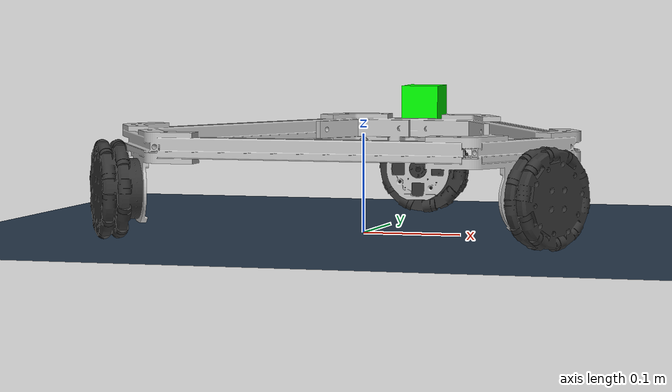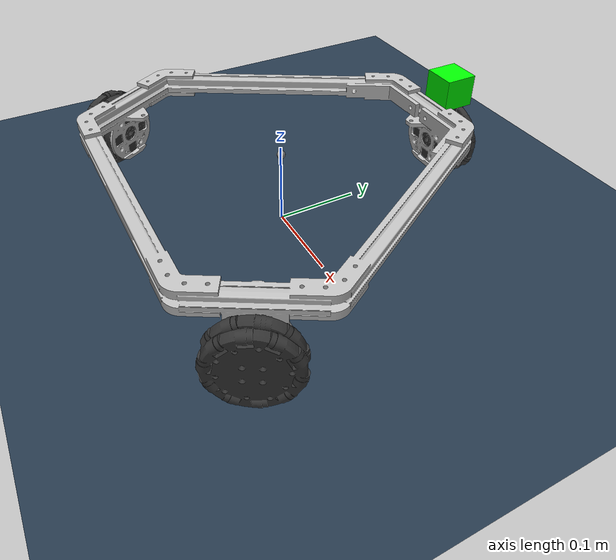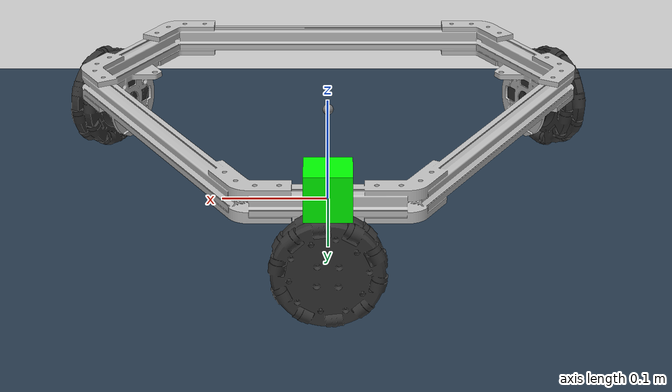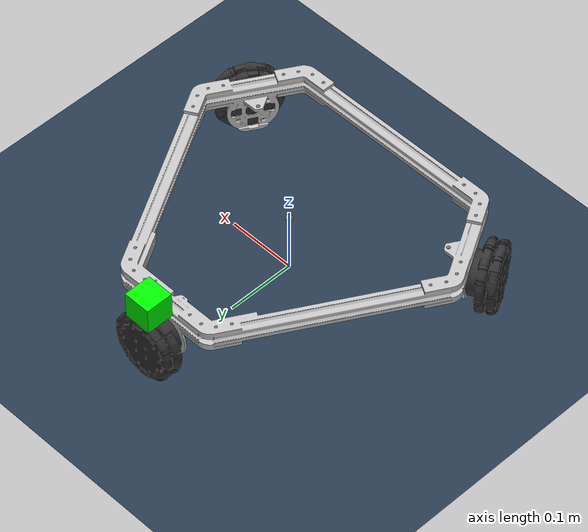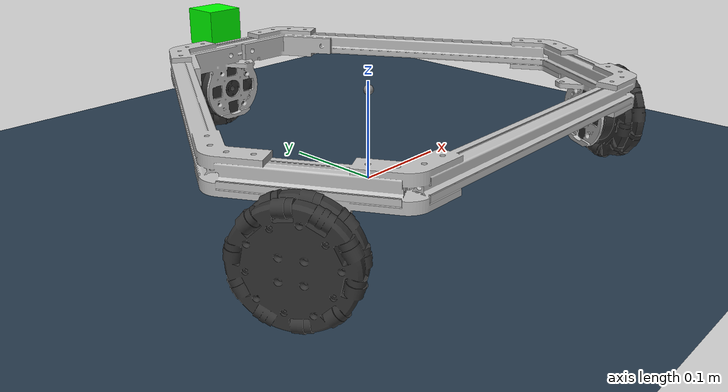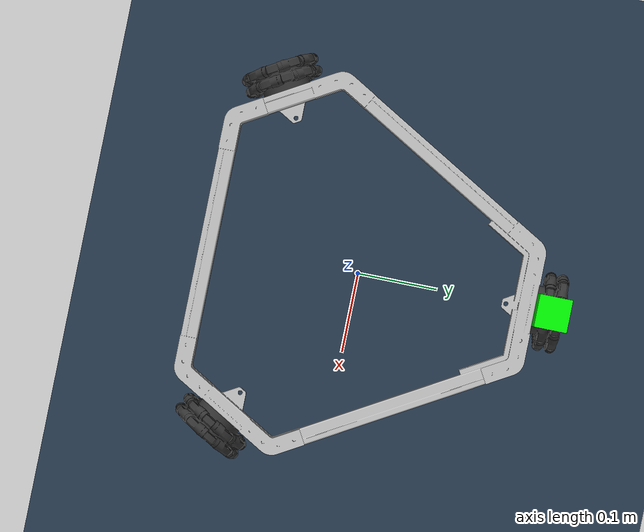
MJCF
<mujoco model="tz_agv">
    <compiler angle="radian" autolimits="true" meshdir="./meshes/" />

    <asset>
        <mesh name="base" file="base.stl" />
        <mesh name="wheel" file="wheel.stl" />

        <texture name="grid" type="2d" builtin="checker" rgb1=".2 .3 .4" rgb2=".1 0.15 0.2" width="512" height="512" mark="cross" markrgb=".8 .8 .8" />
        <material name="grid" texture="grid" texrepeat="1 1" texuniform="true" />
    </asset>

    <worldbody>
        <geom name="floor" size="50 50 0.01" type="plane" material="grid" contype="0" conaffinity="1" />
        <light pos="0.9 0.9 2.5" dir="-0.320815 -0.320815 -0.891154" directional="true" cutoff="4" exponent="20" diffuse="1 1 1" specular="0 0 0" />
    </worldbody>

    <worldbody>
        <camera name="fix_camera" pos="0 0 2" quat="0 0 0.707 0.707" fovy="45" />
        <light name="point_light" pos="0 0 1" dir="0 0 -1" diffuse="1 1 1" specular="0.1 0.1 0.1" />
        <body name="tz_agv" pos="0 0 0.0915">
            <joint name="body_free_joint" type="free" limited="false" actuatorfrclimited="false" />

            <geom name="head_marker" type="box" size="0.02 0.02 0.02" rgba="0 1 0 1" contype="1" conaffinity="0" group="1" pos="0.0 0.2385 0.028" />
            <camera name="front_camera" pos="0 0 0.09" quat="0 0 -0.707 0.707" fovy="45" />
            <camera name="lidar_camera" pos="0 0 0.09" quat="0 0 0.707 0.707" fovy="45" />

            <site name="IMU" pos="0 0 0" quat="0 0 0 1" />
            <body name="base" pos="0 0 0" quat="0 0 0 1">
                <inertial pos="0 0 0" mass="5" diaginertia="1 1 1" />
                <geom type="mesh" rgba="0.762 0.762 0.762 1" mesh="base" contype="1" conaffinity="0" group="1" />

                <body name="front_wheel_intermediate_link" pos="0.0 -0.2385 -0.04175" quat="1 0 0 0">
                    <joint name="front_wheel_rolling_joint" pos="0 0 0" axis="0 1 0" />
                    <inertial pos="0 0 0" quat="0.707107 0 0 0.707107" mass="6.5" diaginertia="0.0524193 0.0303095 0.0303095" />
                    <geom type="mesh" mesh="wheel" contype="0" conaffinity="0" group="1" rgba="0.2 0.2 0.2 1" />

                    <body name="front_roller_0_link" pos="0.015478216208947317 0.0 -0.006411287075089053">
                        <joint name="front_slipping_0_joint" type="hinge" pos="0 0 0" axis="1 0 0" damping="0.1" limited="false" actuatorfrclimited="false" />
                        <inertial pos="0 0 0" quat="0.711549 0.711549 0 0 " mass="0.001" diaginertia="0.00001 0.00001 0.00001" />
                        <geom size="0.0345" quat="1 0 0 0" type="sphere" rgba="0.2 0.2 0.2 1" contype="1" conaffinity="0" group="3" />
                    </body>

                    <body name="front_roller_1_link" pos="0.015478216208947319 0.0 0.00641128707508905">
                        <joint name="front_slipping_1_joint" type="hinge" pos="0 0 0" axis="1 0 0" damping="0.1" limited="false" actuatorfrclimited="false" />
                        <inertial pos="0 0 0" quat="0.711549 0.711549 0 0 " mass="0.001" diaginertia="0.00001 0.00001 0.00001" />
                        <geom size="0.0345" quat="1 0 0 0" type="sphere" rgba="0.2 0.2 0.2 1" contype="1" conaffinity="0" group="3" />
                    </body>

                    <body name="front_roller_2_link" pos="0.006411287075089051 0.0 0.015478216208947317">
                        <joint name="front_slipping_2_joint" type="hinge" pos="0 0 0" axis="1 0 0" damping="0.1" limited="false" actuatorfrclimited="false" />
                        <inertial pos="0 0 0" quat="0.711549 0.711549 0 0 " mass="0.001" diaginertia="0.00001 0.00001 0.00001" />
                        <geom size="0.0345" quat="1 0 0 0" type="sphere" rgba="0.2 0.2 0.2 1" contype="1" conaffinity="0" group="3" />
                    </body>

                    <body name="front_roller_3_link" pos="-0.0064112870750890495 0.0 0.015478216208947319">
                        <joint name="front_slipping_3_joint" type="hinge" pos="0 0 0" axis="1 0 0" damping="0.1" limited="false" actuatorfrclimited="false" />
                        <inertial pos="0 0 0" quat="0.711549 0.711549 0 0 " mass="0.001" diaginertia="0.00001 0.00001 0.00001" />
                        <geom size="0.0345" quat="1 0 0 0" type="sphere" rgba="0.2 0.2 0.2 1" contype="1" conaffinity="0" group="3" />
                    </body>

                    <body name="front_roller_4_link" pos="-0.015478216208947317 0.0 0.006411287075089053">
                        <joint name="front_slipping_4_joint" type="hinge" pos="0 0 0" axis="1 0 0" damping="0.1" limited="false" actuatorfrclimited="false" />
                        <inertial pos="0 0 0" quat="0.711549 0.711549 0 0 " mass="0.001" diaginertia="0.00001 0.00001 0.00001" />
                        <geom size="0.0345" quat="1 0 0 0" type="sphere" rgba="0.2 0.2 0.2 1" contype="1" conaffinity="0" group="3" />
                    </body>

                    <body name="front_roller_5_link" pos="-0.01547821620894732 0.0 -0.0064112870750890495">
                        <joint name="front_slipping_5_joint" type="hinge" pos="0 0 0" axis="1 0 0" damping="0.1" limited="false" actuatorfrclimited="false" />
                        <inertial pos="0 0 0" quat="0.711549 0.711549 0 0 " mass="0.001" diaginertia="0.00001 0.00001 0.00001" />
                        <geom size="0.0345" quat="1 0 0 0" type="sphere" rgba="0.2 0.2 0.2 1" contype="1" conaffinity="0" group="3" />
                    </body>

                    <body name="front_roller_6_link" pos="-0.006411287075089055 0.0 -0.015478216208947317">
                        <joint name="front_slipping_6_joint" type="hinge" pos="0 0 0" axis="1 0 0" damping="0.1" limited="false" actuatorfrclimited="false" />
                        <inertial pos="0 0 0" quat="0.711549 0.711549 0 0 " mass="0.001" diaginertia="0.00001 0.00001 0.00001" />
                        <geom size="0.0345" quat="1 0 0 0" type="sphere" rgba="0.2 0.2 0.2 1" contype="1" conaffinity="0" group="3" />
                    </body>

                    <body name="front_roller_7_link" pos="0.006411287075089048 0.0 -0.01547821620894732">
                        <joint name="front_slipping_7_joint" type="hinge" pos="0 0 0" axis="1 0 0" damping="0.1" limited="false" actuatorfrclimited="false" />
                        <inertial pos="0 0 0" quat="0.711549 0.711549 0 0 " mass="0.001" diaginertia="0.00001 0.00001 0.00001" />
                        <geom size="0.0345" quat="1 0 0 0" type="sphere" rgba="0.2 0.2 0.2 1" contype="1" conaffinity="0" group="3" />
                    </body>
                </body>

                <body name="left_wheel_intermediate_link" pos="0.2171 0.1378 -0.04175" quat="0.5 0 0 0.866">
                    <joint name="left_wheel_rolling_joint" pos="0 0 0" axis="0 1 0" />
                    <inertial pos="0 0 0" quat="0.707107 0 0 0.707107" mass="6.5" diaginertia="0.0524193 0.0303095 0.0303095" />
                    <geom type="mesh" mesh="wheel" contype="0" conaffinity="0" group="1" rgba="0.2 0.2 0.2 1" />

                    <body name="left_roller_0_link" pos="0.015478216208947317 0.0 -0.006411287075089053">
                        <joint name="left_slipping_0_joint" type="hinge" pos="0 0 0" axis="1 0 0" damping="0.1" limited="false" actuatorfrclimited="false" />
                        <inertial pos="0 0 0" quat="0.711549 0.711549 0 0 " mass="0.001" diaginertia="0.00001 0.00001 0.00001" />
                        <geom size="0.0345" quat="1 0 0 0" type="sphere" rgba="0.2 0.2 0.2 1" contype="1" conaffinity="0" group="3" />
                    </body>

                    <body name="left_roller_1_link" pos="0.015478216208947319 0.0 0.00641128707508905">
                        <joint name="left_slipping_1_joint" type="hinge" pos="0 0 0" axis="1 0 0" damping="0.1" limited="false" actuatorfrclimited="false" />
                        <inertial pos="0 0 0" quat="0.711549 0.711549 0 0 " mass="0.001" diaginertia="0.00001 0.00001 0.00001" />
                        <geom size="0.0345" quat="1 0 0 0" type="sphere" rgba="0.2 0.2 0.2 1" contype="1" conaffinity="0" group="3" />
                    </body>

                    <body name="left_roller_2_link" pos="0.006411287075089051 0.0 0.015478216208947317">
                        <joint name="left_slipping_2_joint" type="hinge" pos="0 0 0" axis="1 0 0" damping="0.1" limited="false" actuatorfrclimited="false" />
                        <inertial pos="0 0 0" quat="0.711549 0.711549 0 0 " mass="0.001" diaginertia="0.00001 0.00001 0.00001" />
                        <geom size="0.0345" quat="1 0 0 0" type="sphere" rgba="0.2 0.2 0.2 1" contype="1" conaffinity="0" group="3" />
                    </body>

                    <body name="left_roller_3_link" pos="-0.0064112870750890495 0.0 0.015478216208947319">
                        <joint name="left_slipping_3_joint" type="hinge" pos="0 0 0" axis="1 0 0" damping="0.1" limited="false" actuatorfrclimited="false" />
                        <inertial pos="0 0 0" quat="0.711549 0.711549 0 0 " mass="0.001" diaginertia="0.00001 0.00001 0.00001" />
                        <geom size="0.0345" quat="1 0 0 0" type="sphere" rgba="0.2 0.2 0.2 1" contype="1" conaffinity="0" group="3" />
                    </body>

                    <body name="left_roller_4_link" pos="-0.015478216208947317 0.0 0.006411287075089053">
                        <joint name="left_slipping_4_joint" type="hinge" pos="0 0 0" axis="1 0 0" damping="0.1" limited="false" actuatorfrclimited="false" />
                        <inertial pos="0 0 0" quat="0.711549 0.711549 0 0 " mass="0.001" diaginertia="0.00001 0.00001 0.00001" />
                        <geom size="0.0345" quat="1 0 0 0" type="sphere" rgba="0.2 0.2 0.2 1" contype="1" conaffinity="0" group="3" />
                    </body>

                    <body name="left_roller_5_link" pos="-0.01547821620894732 0.0 -0.0064112870750890495">
                        <joint name="left_slipping_5_joint" type="hinge" pos="0 0 0" axis="1 0 0" damping="0.1" limited="false" actuatorfrclimited="false" />
                        <inertial pos="0 0 0" quat="0.711549 0.711549 0 0 " mass="0.001" diaginertia="0.00001 0.00001 0.00001" />
                        <geom size="0.0345" quat="1 0 0 0" type="sphere" rgba="0.2 0.2 0.2 1" contype="1" conaffinity="0" group="3" />
                    </body>

                    <body name="left_roller_6_link" pos="-0.006411287075089055 0.0 -0.015478216208947317">
                        <joint name="left_slipping_6_joint" type="hinge" pos="0 0 0" axis="1 0 0" damping="0.1" limited="false" actuatorfrclimited="false" />
                        <inertial pos="0 0 0" quat="0.711549 0.711549 0 0 " mass="0.001" diaginertia="0.00001 0.00001 0.00001" />
                        <geom size="0.0345" quat="1 0 0 0" type="sphere" rgba="0.2 0.2 0.2 1" contype="1" conaffinity="0" group="3" />
                    </body>

                    <body name="left_roller_7_link" pos="0.006411287075089048 0.0 -0.01547821620894732">
                        <joint name="left_slipping_7_joint" type="hinge" pos="0 0 0" axis="1 0 0" damping="0.1" limited="false" actuatorfrclimited="false" />
                        <inertial pos="0 0 0" quat="0.711549 0.711549 0 0 " mass="0.001" diaginertia="0.00001 0.00001 0.00001" />
                        <geom size="0.0345" quat="1 0 0 0" type="sphere" rgba="0.2 0.2 0.2 1" contype="1" conaffinity="0" group="3" />
                    </body>
                </body>

                <body name="right_wheel_intermediate_link" pos="-0.2171 0.1378 -0.04175" quat="0.5 0 0 -0.866">
                    <joint name="right_wheel_rolling_joint" pos="0 0 0" axis="0 1 0" />
                    <inertial pos="0 0 0" quat="0.707107 0 0 0.707107" mass="6.5" diaginertia="0.0524193 0.0303095 0.0303095" />
                    <geom type="mesh" mesh="wheel" contype="0" conaffinity="0" group="1" rgba="0.2 0.2 0.2 1" />

                    <body name="right_roller_0_link" pos="0.015478216208947317 0.0 -0.006411287075089053">
                        <joint name="right_slipping_0_joint" type="hinge" pos="0 0 0" axis="1 0 0" damping="0.1" limited="false" actuatorfrclimited="false" />
                        <inertial pos="0 0 0" quat="0.711549 0.711549 0 0 " mass="0.001" diaginertia="0.00001 0.00001 0.00001" />
                        <geom size="0.0345" quat="1 0 0 0" type="sphere" rgba="0.2 0.2 0.2 1" contype="1" conaffinity="0" group="3" />
                    </body>

                    <body name="right_roller_1_link" pos="0.015478216208947319 0.0 0.00641128707508905">
                        <joint name="right_slipping_1_joint" type="hinge" pos="0 0 0" axis="1 0 0" damping="0.1" limited="false" actuatorfrclimited="false" />
                        <inertial pos="0 0 0" quat="0.711549 0.711549 0 0 " mass="0.001" diaginertia="0.00001 0.00001 0.00001" />
                        <geom size="0.0345" quat="1 0 0 0" type="sphere" rgba="0.2 0.2 0.2 1" contype="1" conaffinity="0" group="3" />
                    </body>

                    <body name="right_roller_2_link" pos="0.006411287075089051 0.0 0.015478216208947317">
                        <joint name="right_slipping_2_joint" type="hinge" pos="0 0 0" axis="1 0 0" damping="0.1" limited="false" actuatorfrclimited="false" />
                        <inertial pos="0 0 0" quat="0.711549 0.711549 0 0 " mass="0.001" diaginertia="0.00001 0.00001 0.00001" />
                        <geom size="0.0345" quat="1 0 0 0" type="sphere" rgba="0.2 0.2 0.2 1" contype="1" conaffinity="0" group="3" />
                    </body>

                    <body name="right_roller_3_link" pos="-0.0064112870750890495 0.0 0.015478216208947319">
                        <joint name="right_slipping_3_joint" type="hinge" pos="0 0 0" axis="1 0 0" damping="0.1" limited="false" actuatorfrclimited="false" />
                        <inertial pos="0 0 0" quat="0.711549 0.711549 0 0 " mass="0.001" diaginertia="0.00001 0.00001 0.00001" />
                        <geom size="0.0345" quat="1 0 0 0" type="sphere" rgba="0.2 0.2 0.2 1" contype="1" conaffinity="0" group="3" />
                    </body>

                    <body name="right_roller_4_link" pos="-0.015478216208947317 0.0 0.006411287075089053">
                        <joint name="right_slipping_4_joint" type="hinge" pos="0 0 0" axis="1 0 0" damping="0.1" limited="false" actuatorfrclimited="false" />
                        <inertial pos="0 0 0" quat="0.711549 0.711549 0 0 " mass="0.001" diaginertia="0.00001 0.00001 0.00001" />
                        <geom size="0.0345" quat="1 0 0 0" type="sphere" rgba="0.2 0.2 0.2 1" contype="1" conaffinity="0" group="3" />
                    </body>

                    <body name="right_roller_5_link" pos="-0.01547821620894732 0.0 -0.0064112870750890495">
                        <joint name="right_slipping_5_joint" type="hinge" pos="0 0 0" axis="1 0 0" damping="0.1" limited="false" actuatorfrclimited="false" />
                        <inertial pos="0 0 0" quat="0.711549 0.711549 0 0 " mass="0.001" diaginertia="0.00001 0.00001 0.00001" />
                        <geom size="0.0345" quat="1 0 0 0" type="sphere" rgba="0.2 0.2 0.2 1" contype="1" conaffinity="0" group="3" />
                    </body>

                    <body name="right_roller_6_link" pos="-0.006411287075089055 0.0 -0.015478216208947317">
                        <joint name="right_slipping_6_joint" type="hinge" pos="0 0 0" axis="1 0 0" damping="0.1" limited="false" actuatorfrclimited="false" />
                        <inertial pos="0 0 0" quat="0.711549 0.711549 0 0 " mass="0.001" diaginertia="0.00001 0.00001 0.00001" />
                        <geom size="0.0345" quat="1 0 0 0" type="sphere" rgba="0.2 0.2 0.2 1" contype="1" conaffinity="0" group="3" />
                    </body>

                    <body name="right_roller_7_link" pos="0.006411287075089048 0.0 -0.01547821620894732">
                        <joint name="right_slipping_7_joint" type="hinge" pos="0 0 0" axis="1 0 0" damping="0.1" limited="false" actuatorfrclimited="false" />
                        <inertial pos="0 0 0" quat="0.711549 0.711549 0 0 " mass="0.001" diaginertia="0.00001 0.00001 0.00001" />
                        <geom size="0.0345" quat="1 0 0 0" type="sphere" rgba="0.2 0.2 0.2 1" contype="1" conaffinity="0" group="3" />
                    </body>
                </body>

            </body>
        </body>
    </worldbody>

    <sensor>
        <accelerometer name="acc" site="IMU" />
        <gyro name="gyro" site="IMU" />
        <velocimeter name="vel" site="IMU" />
    </sensor>

    <actuator>
        <motor name="front_wheel_torque" joint="front_wheel_rolling_joint" ctrlrange="-5 5" />
        <motor name="left_wheel_torque" joint="left_wheel_rolling_joint" ctrlrange="-5 5" />
        <motor name="right_wheel_torque" joint="right_wheel_rolling_joint" ctrlrange="-5 5" />
    </actuator>

</mujoco>
